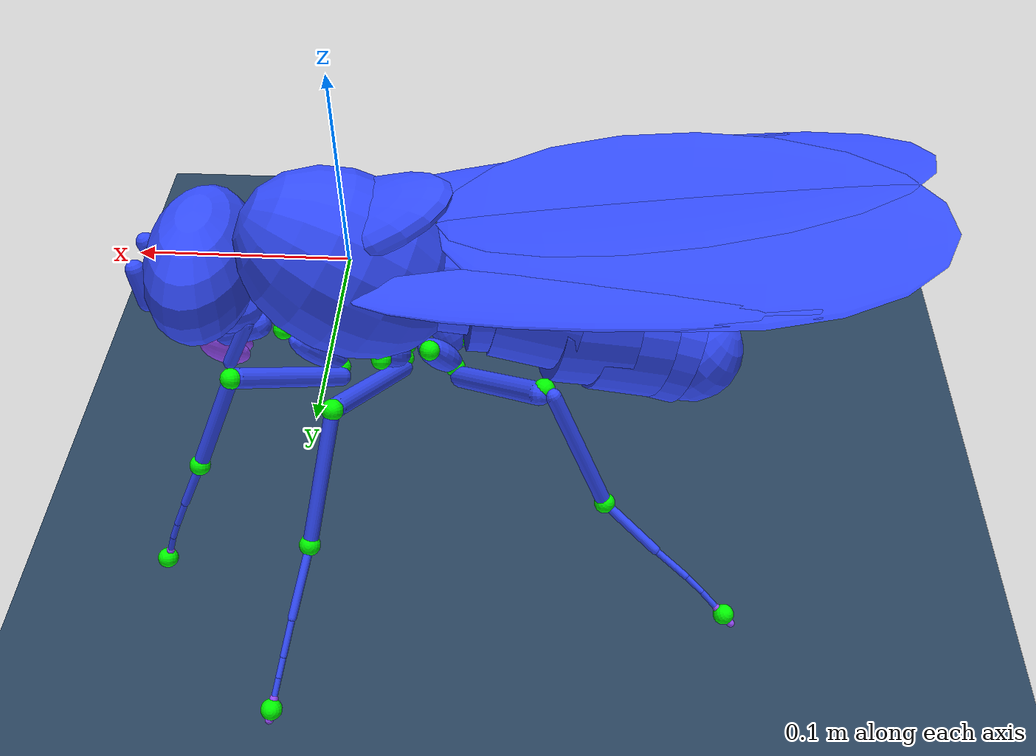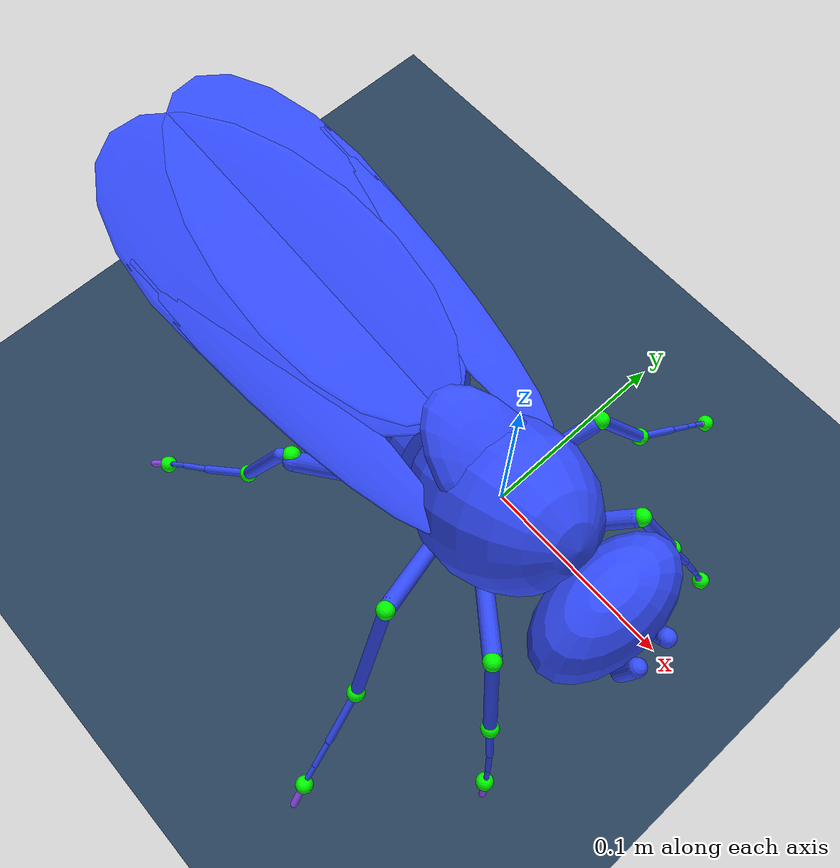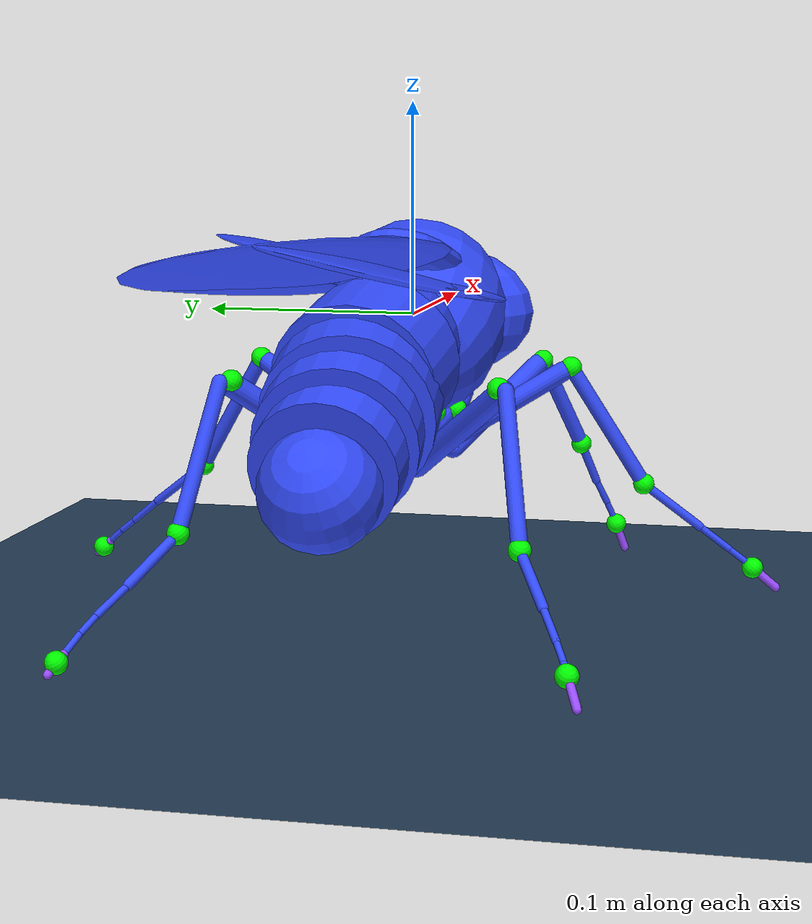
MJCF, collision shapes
<mujoco>
  <compiler autolimits="true" angle="radian"/>

  <asset>
    <texture name="grid" type="2d" builtin="checker" rgb1=".1 .2 .3" rgb2=".2 .3 .4" width="300" height="300" mark="edge" markrgb=".2 .3 .4"/>
    <material name="grid" texture="grid" texrepeat="1 1" texuniform="true" reflectance=".2"/>
    <texture name="skybox" type="skybox" builtin="gradient" rgb1=".4 .6 .8" rgb2="0 0 0"
           width="100" height="100"/>
  </asset>

  <include file="./fruitfly_force.xml"/>

  <worldbody>
    <geom name="floor" type="plane" size="5 5 .1" material="grid" pos="0 0 -.132" solref="0.0002 1"/>
  </worldbody>

</mujoco>
